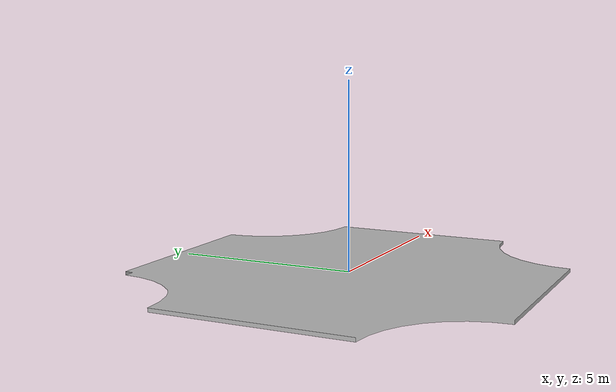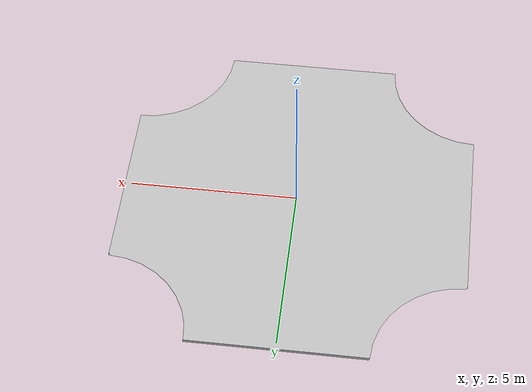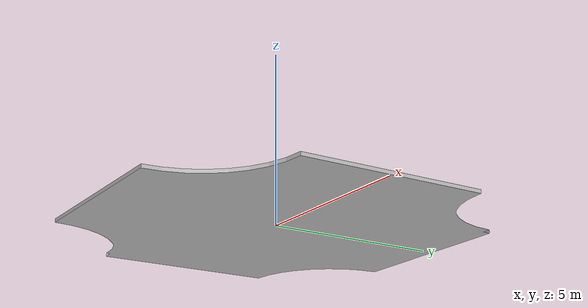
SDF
<?xml version="1.0" ?>
<sdf version="1.6">
  <model name="road_intersection_2">
    <pose>0 0 0 0 0 0</pose>
    <static>true</static>
    <link name="link">
      <visual name="visual">
        <geometry>
          <mesh>
            <uri>model://road_intersection_2/meshes/road_intersection.dae</uri>
          </mesh>
        </geometry>
      </visual>
      <collision name="collision">
        <geometry>
          <mesh>
            <uri>model://road_intersection_2/meshes/road_intersection.dae</uri>
          </mesh>
        </geometry>
      </collision>
    </link>
  </model>
</sdf>
